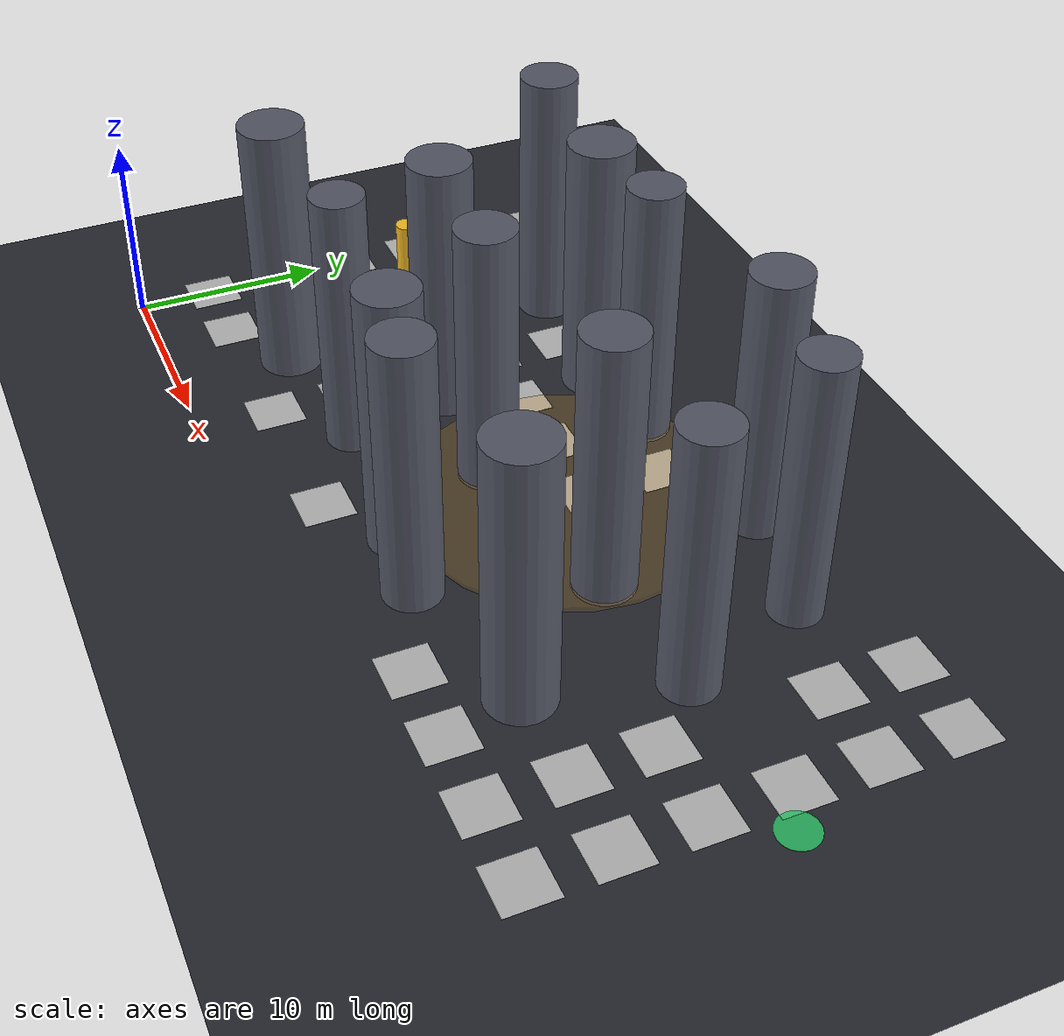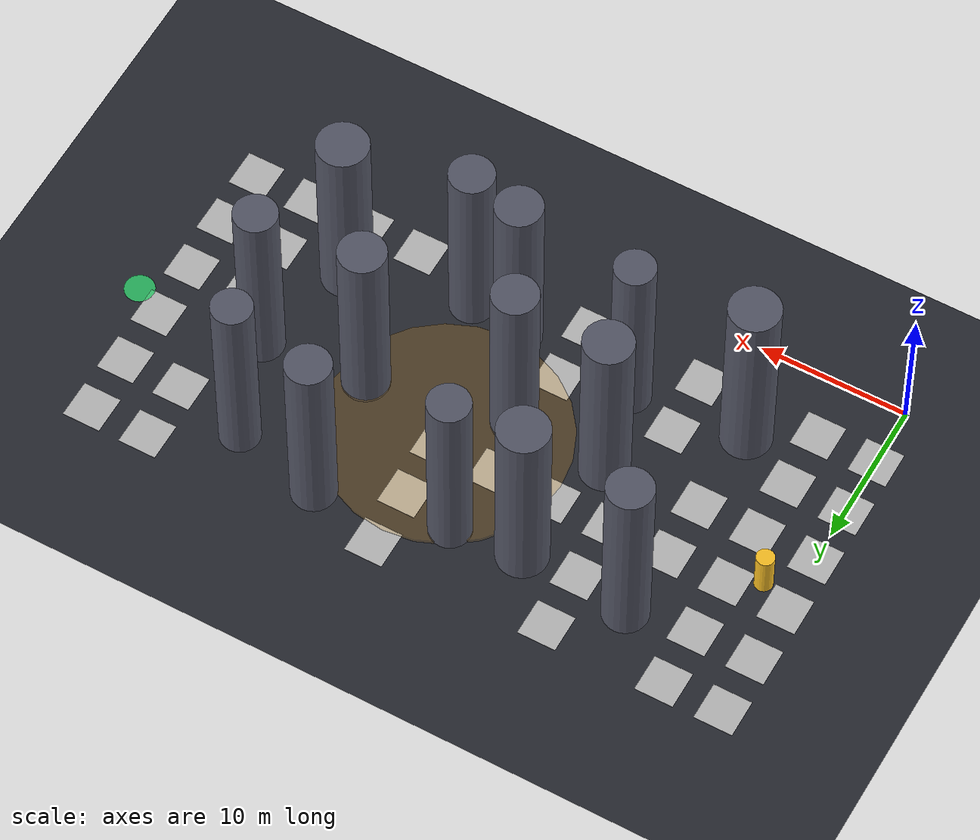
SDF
<?xml version="1.0" ?>
<!-- GENERATED by tools/gen_maps.py -- do not edit by hand. -->
<sdf version="1.6">
  <world name="real_dense">
    <gravity>0 0 -9.81</gravity>
    <scene><ambient>0.5 0.52 0.55 1</ambient><background>0.62 0.66 0.72 1</background><shadows>true</shadows>
      <fog><color>0.62 0.66 0.72 1</color><type>linear</type><start>16</start><end>90</end><density>0.02</density></fog></scene>
    <light name="sun" type="directional"><cast_shadows>true</cast_shadows><pose>0 0 40 0 0 0</pose>
      <diffuse>0.9 0.9 0.9 1</diffuse><specular>0.2 0.2 0.2 1</specular><direction>-0.4 0.3 -0.9</direction></light>
    <model name="ground"><static>true</static><link name="link">
      <collision name="c"><geometry><plane><normal>0 0 1</normal><size>400 400</size></plane></geometry></collision>
      <visual name="v"><geometry><plane><normal>0 0 1</normal><size>400 400</size></plane></geometry>
      <material><ambient>0.15 0.16 0.19</ambient><diffuse>0.15 0.16 0.19</diffuse></material></visual></link></model>
    <model name="tower0"><static>true</static><pose>7.829 6.215 7.000 0 0 0</pose><link name="l"><collision name="c"><geometry><cylinder><radius>1.6696842336094917</radius><length>14.0</length></cylinder></geometry></collision><visual name="v"><geometry><cylinder><radius>1.6696842336094917</radius><length>14.0</length></cylinder></geometry><material><ambient>0.33 0.34 0.4 1</ambient><diffuse>0.33 0.34 0.4 1</diffuse></material></visual></link></model>
    <model name="tower1"><static>true</static><pose>8.315 20.865 7.000 0 0 0</pose><link name="l"><collision name="c"><geometry><cylinder><radius>1.5047634556167222</radius><length>14.0</length></cylinder></geometry></collision><visual name="v"><geometry><cylinder><radius>1.5047634556167222</radius><length>14.0</length></cylinder></geometry><material><ambient>0.33 0.34 0.4 1</ambient><diffuse>0.33 0.34 0.4 1</diffuse></material></visual></link></model>
    <model name="tower2"><static>true</static><pose>15.468 7.055 7.000 0 0 0</pose><link name="l"><collision name="c"><geometry><cylinder><radius>1.3376493824916875</radius><length>14.0</length></cylinder></geometry></collision><visual name="v"><geometry><cylinder><radius>1.3376493824916875</radius><length>14.0</length></cylinder></geometry><material><ambient>0.33 0.34 0.4 1</ambient><diffuse>0.33 0.34 0.4 1</diffuse></material></visual></link></model>
    <model name="tower3"><static>true</static><pose>14.292 12.526 7.000 0 0 0</pose><link name="l"><collision name="c"><geometry><cylinder><radius>1.6238578137468709</radius><length>14.0</length></cylinder></geometry></collision><visual name="v"><geometry><cylinder><radius>1.6238578137468709</radius><length>14.0</length></cylinder></geometry><material><ambient>0.33 0.34 0.4 1</ambient><diffuse>0.33 0.34 0.4 1</diffuse></material></visual></link></model>
    <model name="tower4"><static>true</static><pose>15.696 20.351 7.000 0 0 0</pose><link name="l"><collision name="c"><geometry><cylinder><radius>1.6928773683195113</radius><length>14.0</length></cylinder></geometry></collision><visual name="v"><geometry><cylinder><radius>1.6928773683195113</radius><length>14.0</length></cylinder></geometry><material><ambient>0.33 0.34 0.4 1</ambient><diffuse>0.33 0.34 0.4 1</diffuse></material></visual></link></model>
    <model name="tower5"><static>true</static><pose>23.673 6.554 7.000 0 0 0</pose><link name="l"><collision name="c"><geometry><cylinder><radius>1.5462250818314283</radius><length>14.0</length></cylinder></geometry></collision><visual name="v"><geometry><cylinder><radius>1.5462250818314283</radius><length>14.0</length></cylinder></geometry><material><ambient>0.33 0.34 0.4 1</ambient><diffuse>0.33 0.34 0.4 1</diffuse></material></visual></link></model>
    <model name="tower6"><static>true</static><pose>20.767 12.254 7.000 0 0 0</pose><link name="l"><collision name="c"><geometry><cylinder><radius>1.5113525064681914</radius><length>14.0</length></cylinder></geometry></collision><visual name="v"><geometry><cylinder><radius>1.5113525064681914</radius><length>14.0</length></cylinder></geometry><material><ambient>0.33 0.34 0.4 1</ambient><diffuse>0.33 0.34 0.4 1</diffuse></material></visual></link></model>
    <model name="tower7"><static>true</static><pose>20.414 20.885 7.000 0 0 0</pose><link name="l"><collision name="c"><geometry><cylinder><radius>1.3967772054660859</radius><length>14.0</length></cylinder></geometry></collision><visual name="v"><geometry><cylinder><radius>1.3967772054660859</radius><length>14.0</length></cylinder></geometry><material><ambient>0.33 0.34 0.4 1</ambient><diffuse>0.33 0.34 0.4 1</diffuse></material></visual></link></model>
    <model name="tower8"><static>true</static><pose>27.308 5.870 7.000 0 0 0</pose><link name="l"><collision name="c"><geometry><cylinder><radius>1.4762124466626627</radius><length>14.0</length></cylinder></geometry></collision><visual name="v"><geometry><cylinder><radius>1.4762124466626627</radius><length>14.0</length></cylinder></geometry><material><ambient>0.33 0.34 0.4 1</ambient><diffuse>0.33 0.34 0.4 1</diffuse></material></visual></link></model>
    <model name="tower9"><static>true</static><pose>30.233 14.069 7.000 0 0 0</pose><link name="l"><collision name="c"><geometry><cylinder><radius>1.5561166831676707</radius><length>14.0</length></cylinder></geometry></collision><visual name="v"><geometry><cylinder><radius>1.5561166831676707</radius><length>14.0</length></cylinder></geometry><material><ambient>0.33 0.34 0.4 1</ambient><diffuse>0.33 0.34 0.4 1</diffuse></material></visual></link></model>
    <model name="tower10"><static>true</static><pose>28.999 22.585 7.000 0 0 0</pose><link name="l"><collision name="c"><geometry><cylinder><radius>1.482931952639823</radius><length>14.0</length></cylinder></geometry></collision><visual name="v"><geometry><cylinder><radius>1.482931952639823</radius><length>14.0</length></cylinder></geometry><material><ambient>0.33 0.34 0.4 1</ambient><diffuse>0.33 0.34 0.4 1</diffuse></material></visual></link></model>
    <model name="tower11"><static>true</static><pose>35.201 7.792 7.000 0 0 0</pose><link name="l"><collision name="c"><geometry><cylinder><radius>1.6982766566624796</radius><length>14.0</length></cylinder></geometry></collision><visual name="v"><geometry><cylinder><radius>1.6982766566624796</radius><length>14.0</length></cylinder></geometry><material><ambient>0.33 0.34 0.4 1</ambient><diffuse>0.33 0.34 0.4 1</diffuse></material></visual></link></model>
    <model name="tower12"><static>true</static><pose>37.225 14.748 7.000 0 0 0</pose><link name="l"><collision name="c"><geometry><cylinder><radius>1.42611088680622</radius><length>14.0</length></cylinder></geometry></collision><visual name="v"><geometry><cylinder><radius>1.42611088680622</radius><length>14.0</length></cylinder></geometry><material><ambient>0.33 0.34 0.4 1</ambient><diffuse>0.33 0.34 0.4 1</diffuse></material></visual></link></model>
    <model name="tower13"><static>true</static><pose>35.027 21.241 7.000 0 0 0</pose><link name="l"><collision name="c"><geometry><cylinder><radius>1.3280893998239705</radius><length>14.0</length></cylinder></geometry></collision><visual name="v"><geometry><cylinder><radius>1.3280893998239705</radius><length>14.0</length></cylinder></geometry><material><ambient>0.33 0.34 0.4 1</ambient><diffuse>0.33 0.34 0.4 1</diffuse></material></visual></link></model>
    <model name="hard_patch"><static>true</static><pose>24.000 15.000 0.03 0 0 0</pose><link name="l"><visual name="v"><geometry><cylinder><radius>8.0</radius><length>0.3</length></cylinder></geometry><material><ambient>0.96 0.62 0.04 0.18</ambient><diffuse>0.96 0.62 0.04 0.18</diffuse></material></visual></link></model>
    <model name="aruco0"><static>true</static><pose>0.000 4.000 0.02 0 0 0</pose><link name="l"><visual name="v"><geometry><box><size>2.6 2.6 0.02</size></box></geometry><material><script><uri>file://materials/scripts</uri><uri>file://materials/textures</uri><name>aruco/0</name></script></material></visual></link></model>
    <model name="aruco1"><static>true</static><pose>0.000 8.000 0.02 0 0 0</pose><link name="l"><visual name="v"><geometry><box><size>2.6 2.6 0.02</size></box></geometry><material><script><uri>file://materials/scripts</uri><uri>file://materials/textures</uri><name>aruco/1</name></script></material></visual></link></model>
    <model name="aruco2"><static>true</static><pose>0.000 12.000 0.02 0 0 0</pose><link name="l"><visual name="v"><geometry><box><size>2.6 2.6 0.02</size></box></geometry><material><script><uri>file://materials/scripts</uri><uri>file://materials/textures</uri><name>aruco/2</name></script></material></visual></link></model>
    <model name="aruco3"><static>true</static><pose>0.000 16.000 0.02 0 0 0</pose><link name="l"><visual name="v"><geometry><box><size>2.6 2.6 0.02</size></box></geometry><material><script><uri>file://materials/scripts</uri><uri>file://materials/textures</uri><name>aruco/3</name></script></material></visual></link></model>
    <model name="aruco4"><static>true</static><pose>0.000 20.000 0.02 0 0 0</pose><link name="l"><visual name="v"><geometry><box><size>2.6 2.6 0.02</size></box></geometry><material><script><uri>file://materials/scripts</uri><uri>file://materials/textures</uri><name>aruco/4</name></script></material></visual></link></model>
    <model name="aruco5"><static>true</static><pose>0.000 24.000 0.02 0 0 0</pose><link name="l"><visual name="v"><geometry><box><size>2.6 2.6 0.02</size></box></geometry><material><script><uri>file://materials/scripts</uri><uri>file://materials/textures</uri><name>aruco/5</name></script></material></visual></link></model>
    <model name="aruco6"><static>true</static><pose>4.000 4.000 0.02 0 0 0</pose><link name="l"><visual name="v"><geometry><box><size>2.6 2.6 0.02</size></box></geometry><material><script><uri>file://materials/scripts</uri><uri>file://materials/textures</uri><name>aruco/6</name></script></material></visual></link></model>
    <model name="aruco7"><static>true</static><pose>4.000 8.000 0.02 0 0 0</pose><link name="l"><visual name="v"><geometry><box><size>2.6 2.6 0.02</size></box></geometry><material><script><uri>file://materials/scripts</uri><uri>file://materials/textures</uri><name>aruco/7</name></script></material></visual></link></model>
    <model name="aruco8"><static>true</static><pose>4.000 12.000 0.02 0 0 0</pose><link name="l"><visual name="v"><geometry><box><size>2.6 2.6 0.02</size></box></geometry><material><script><uri>file://materials/scripts</uri><uri>file://materials/textures</uri><name>aruco/8</name></script></material></visual></link></model>
    <model name="aruco9"><static>true</static><pose>4.000 16.000 0.02 0 0 0</pose><link name="l"><visual name="v"><geometry><box><size>2.6 2.6 0.02</size></box></geometry><material><script><uri>file://materials/scripts</uri><uri>file://materials/textures</uri><name>aruco/9</name></script></material></visual></link></model>
    <model name="aruco10"><static>true</static><pose>4.000 20.000 0.02 0 0 0</pose><link name="l"><visual name="v"><geometry><box><size>2.6 2.6 0.02</size></box></geometry><material><script><uri>file://materials/scripts</uri><uri>file://materials/textures</uri><name>aruco/10</name></script></material></visual></link></model>
    <model name="aruco11"><static>true</static><pose>4.000 24.000 0.02 0 0 0</pose><link name="l"><visual name="v"><geometry><box><size>2.6 2.6 0.02</size></box></geometry><material><script><uri>file://materials/scripts</uri><uri>file://materials/textures</uri><name>aruco/11</name></script></material></visual></link></model>
    <model name="aruco12"><static>true</static><pose>8.000 12.000 0.02 0 0 0</pose><link name="l"><visual name="v"><geometry><box><size>2.6 2.6 0.02</size></box></geometry><material><script><uri>file://materials/scripts</uri><uri>file://materials/textures</uri><name>aruco/12</name></script></material></visual></link></model>
    <model name="aruco13"><static>true</static><pose>8.000 16.000 0.02 0 0 0</pose><link name="l"><visual name="v"><geometry><box><size>2.6 2.6 0.02</size></box></geometry><material><script><uri>file://materials/scripts</uri><uri>file://materials/textures</uri><name>aruco/13</name></script></material></visual></link></model>
    <model name="aruco14"><static>true</static><pose>12.000 4.000 0.02 0 0 0</pose><link name="l"><visual name="v"><geometry><box><size>2.6 2.6 0.02</size></box></geometry><material><script><uri>file://materials/scripts</uri><uri>file://materials/textures</uri><name>aruco/14</name></script></material></visual></link></model>
    <model name="aruco15"><static>true</static><pose>12.000 8.000 0.02 0 0 0</pose><link name="l"><visual name="v"><geometry><box><size>2.6 2.6 0.02</size></box></geometry><material><script><uri>file://materials/scripts</uri><uri>file://materials/textures</uri><name>aruco/15</name></script></material></visual></link></model>
    <model name="aruco16"><static>true</static><pose>12.000 16.000 0.02 0 0 0</pose><link name="l"><visual name="v"><geometry><box><size>2.6 2.6 0.02</size></box></geometry><material><script><uri>file://materials/scripts</uri><uri>file://materials/textures</uri><name>aruco/16</name></script></material></visual></link></model>
    <model name="aruco17"><static>true</static><pose>12.000 20.000 0.02 0 0 0</pose><link name="l"><visual name="v"><geometry><box><size>2.6 2.6 0.02</size></box></geometry><material><script><uri>file://materials/scripts</uri><uri>file://materials/textures</uri><name>aruco/17</name></script></material></visual></link></model>
    <model name="aruco18"><static>true</static><pose>12.000 24.000 0.02 0 0 0</pose><link name="l"><visual name="v"><geometry><box><size>2.6 2.6 0.02</size></box></geometry><material><script><uri>file://materials/scripts</uri><uri>file://materials/textures</uri><name>aruco/18</name></script></material></visual></link></model>
    <model name="aruco19"><static>true</static><pose>16.000 16.000 0.02 0 0 0</pose><link name="l"><visual name="v"><geometry><box><size>2.6 2.6 0.02</size></box></geometry><material><script><uri>file://materials/scripts</uri><uri>file://materials/textures</uri><name>aruco/19</name></script></material></visual></link></model>
    <model name="aruco20"><static>true</static><pose>20.000 4.000 0.02 0 0 0</pose><link name="l"><visual name="v"><geometry><box><size>2.6 2.6 0.02</size></box></geometry><material><script><uri>file://materials/scripts</uri><uri>file://materials/textures</uri><name>aruco/20</name></script></material></visual></link></model>
    <model name="aruco21"><static>true</static><pose>20.000 8.000 0.02 0 0 0</pose><link name="l"><visual name="v"><geometry><box><size>2.6 2.6 0.02</size></box></geometry><material><script><uri>file://materials/scripts</uri><uri>file://materials/textures</uri><name>aruco/21</name></script></material></visual></link></model>
    <model name="aruco22"><static>true</static><pose>20.000 16.000 0.02 0 0 0</pose><link name="l"><visual name="v"><geometry><box><size>2.6 2.6 0.02</size></box></geometry><material><script><uri>file://materials/scripts</uri><uri>file://materials/textures</uri><name>aruco/22</name></script></material></visual></link></model>
    <model name="aruco23"><static>true</static><pose>24.000 16.000 0.02 0 0 0</pose><link name="l"><visual name="v"><geometry><box><size>2.6 2.6 0.02</size></box></geometry><material><script><uri>file://materials/scripts</uri><uri>file://materials/textures</uri><name>aruco/23</name></script></material></visual></link></model>
    <model name="aruco24"><static>true</static><pose>24.000 20.000 0.02 0 0 0</pose><link name="l"><visual name="v"><geometry><box><size>2.6 2.6 0.02</size></box></geometry><material><script><uri>file://materials/scripts</uri><uri>file://materials/textures</uri><name>aruco/24</name></script></material></visual></link></model>
    <model name="aruco25"><static>true</static><pose>24.000 24.000 0.02 0 0 0</pose><link name="l"><visual name="v"><geometry><box><size>2.6 2.6 0.02</size></box></geometry><material><script><uri>file://materials/scripts</uri><uri>file://materials/textures</uri><name>aruco/25</name></script></material></visual></link></model>
    <model name="aruco26"><static>true</static><pose>32.000 4.000 0.02 0 0 0</pose><link name="l"><visual name="v"><geometry><box><size>2.6 2.6 0.02</size></box></geometry><material><script><uri>file://materials/scripts</uri><uri>file://materials/textures</uri><name>aruco/26</name></script></material></visual></link></model>
    <model name="aruco27"><static>true</static><pose>36.000 4.000 0.02 0 0 0</pose><link name="l"><visual name="v"><geometry><box><size>2.6 2.6 0.02</size></box></geometry><material><script><uri>file://materials/scripts</uri><uri>file://materials/textures</uri><name>aruco/27</name></script></material></visual></link></model>
    <model name="aruco28"><static>true</static><pose>40.000 4.000 0.02 0 0 0</pose><link name="l"><visual name="v"><geometry><box><size>2.6 2.6 0.02</size></box></geometry><material><script><uri>file://materials/scripts</uri><uri>file://materials/textures</uri><name>aruco/28</name></script></material></visual></link></model>
    <model name="aruco29"><static>true</static><pose>40.000 8.000 0.02 0 0 0</pose><link name="l"><visual name="v"><geometry><box><size>2.6 2.6 0.02</size></box></geometry><material><script><uri>file://materials/scripts</uri><uri>file://materials/textures</uri><name>aruco/29</name></script></material></visual></link></model>
    <model name="aruco30"><static>true</static><pose>40.000 12.000 0.02 0 0 0</pose><link name="l"><visual name="v"><geometry><box><size>2.6 2.6 0.02</size></box></geometry><material><script><uri>file://materials/scripts</uri><uri>file://materials/textures</uri><name>aruco/30</name></script></material></visual></link></model>
    <model name="aruco31"><static>true</static><pose>40.000 20.000 0.02 0 0 0</pose><link name="l"><visual name="v"><geometry><box><size>2.6 2.6 0.02</size></box></geometry><material><script><uri>file://materials/scripts</uri><uri>file://materials/textures</uri><name>aruco/31</name></script></material></visual></link></model>
    <model name="aruco32"><static>true</static><pose>40.000 24.000 0.02 0 0 0</pose><link name="l"><visual name="v"><geometry><box><size>2.6 2.6 0.02</size></box></geometry><material><script><uri>file://materials/scripts</uri><uri>file://materials/textures</uri><name>aruco/32</name></script></material></visual></link></model>
    <model name="aruco33"><static>true</static><pose>44.000 4.000 0.02 0 0 0</pose><link name="l"><visual name="v"><geometry><box><size>2.6 2.6 0.02</size></box></geometry><material><script><uri>file://materials/scripts</uri><uri>file://materials/textures</uri><name>aruco/33</name></script></material></visual></link></model>
    <model name="aruco34"><static>true</static><pose>44.000 8.000 0.02 0 0 0</pose><link name="l"><visual name="v"><geometry><box><size>2.6 2.6 0.02</size></box></geometry><material><script><uri>file://materials/scripts</uri><uri>file://materials/textures</uri><name>aruco/34</name></script></material></visual></link></model>
    <model name="aruco35"><static>true</static><pose>44.000 12.000 0.02 0 0 0</pose><link name="l"><visual name="v"><geometry><box><size>2.6 2.6 0.02</size></box></geometry><material><script><uri>file://materials/scripts</uri><uri>file://materials/textures</uri><name>aruco/35</name></script></material></visual></link></model>
    <model name="aruco36"><static>true</static><pose>44.000 16.000 0.02 0 0 0</pose><link name="l"><visual name="v"><geometry><box><size>2.6 2.6 0.02</size></box></geometry><material><script><uri>file://materials/scripts</uri><uri>file://materials/textures</uri><name>aruco/36</name></script></material></visual></link></model>
    <model name="aruco37"><static>true</static><pose>44.000 20.000 0.02 0 0 0</pose><link name="l"><visual name="v"><geometry><box><size>2.6 2.6 0.02</size></box></geometry><material><script><uri>file://materials/scripts</uri><uri>file://materials/textures</uri><name>aruco/37</name></script></material></visual></link></model>
    <model name="aruco38"><static>true</static><pose>44.000 24.000 0.02 0 0 0</pose><link name="l"><visual name="v"><geometry><box><size>2.6 2.6 0.02</size></box></geometry><material><script><uri>file://materials/scripts</uri><uri>file://materials/textures</uri><name>aruco/38</name></script></material></visual></link></model>
    <model name="target_B"><static>true</static><pose>2.000 15.000 1.500 0 0 0</pose><link name="l"><collision name="c"><geometry><cylinder><radius>0.6</radius><length>3.0</length></cylinder></geometry></collision><visual name="v"><geometry><cylinder><radius>0.6</radius><length>3.0</length></cylinder></geometry><material><ambient>0.98 0.75 0.14 1</ambient><diffuse>0.98 0.75 0.14 1</diffuse></material></visual></link></model>
    <model name="start_pad"><static>true</static><pose>46.000 15.000 0.020 0 0 0</pose><link name="l"><collision name="c"><geometry><cylinder><radius>1.0</radius><length>0.04</length></cylinder></geometry></collision><visual name="v"><geometry><cylinder><radius>1.0</radius><length>0.04</length></cylinder></geometry><material><ambient>0.2 0.83 0.44 0.85</ambient><diffuse>0.2 0.83 0.44 0.85</diffuse></material></visual></link></model>
    <plugin name="gazebo_ros_state" filename="libgazebo_ros_state.so"><ros><namespace>/gazebo</namespace></ros><update_rate>0.0</update_rate></plugin>
    <physics name="ode" type="ode"><max_step_size>0.004</max_step_size><real_time_update_rate>250</real_time_update_rate></physics>
  </world>
</sdf>
